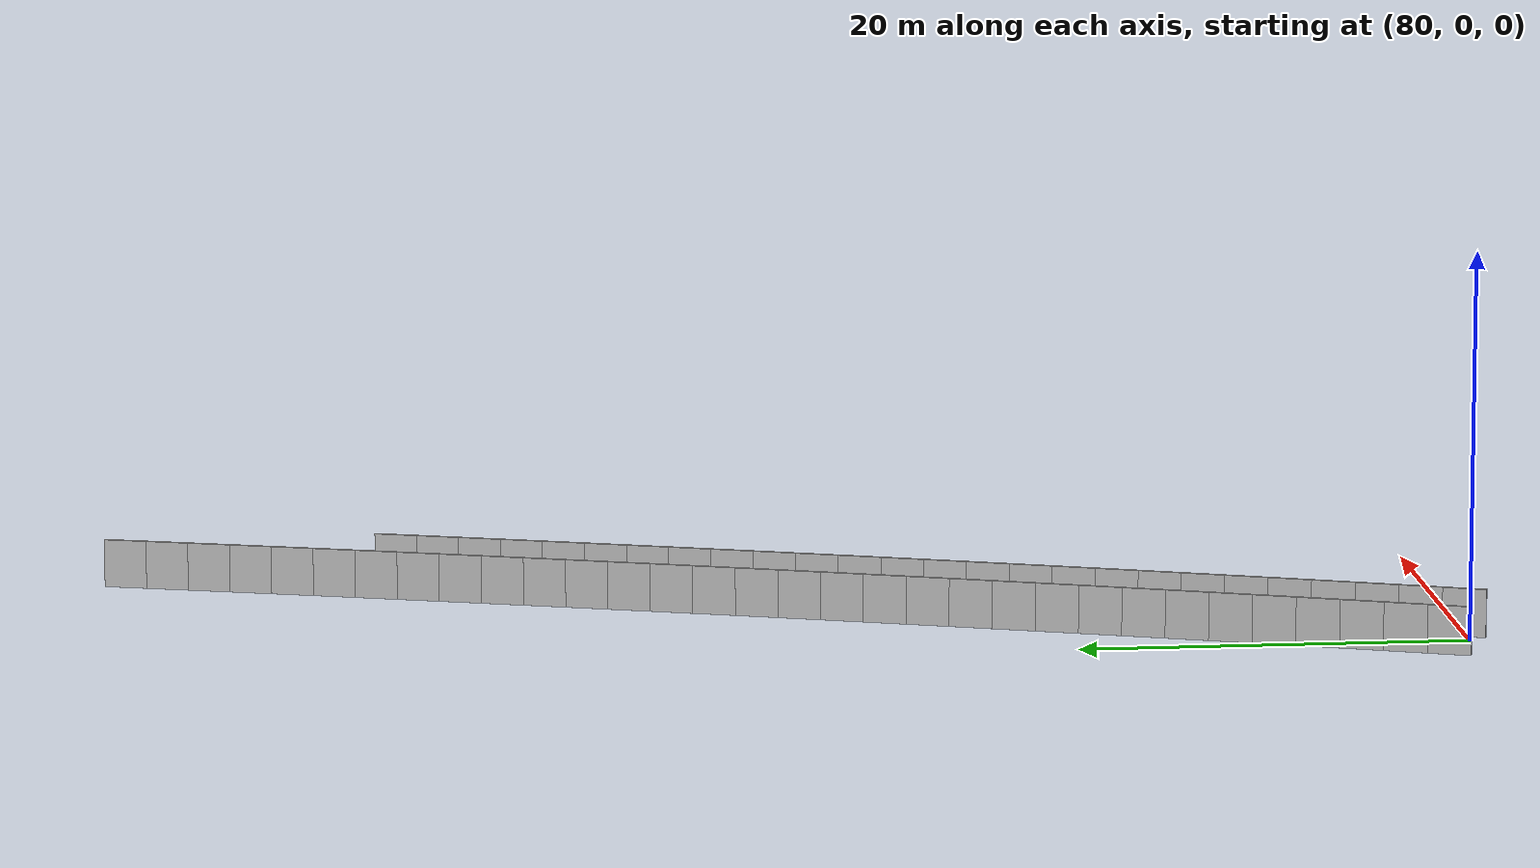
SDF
<?xml version="1.0" ?>
<sdf version="1.6">
  <model name="sps_2209">
    <pose frame="">0 0 0 0 -0 0</pose>
    <static>1</static>
    <self_collide>0</self_collide>
    <allow_auto_disable>0</allow_auto_disable>
    <link name="Wall4435">
      <kinematic>0</kinematic>
      <gravity>1</gravity>
      <self_collide>0</self_collide>
      <collision name="collision">
        <geometry>
          <box>
            <size>2.25456 0.15 2.5</size>
          </box>
        </geometry>
        <pose frame="">0 0 0 0 -0 0</pose>
      </collision>
      <visual name="visual">
        <geometry>
          <box>
            <size>2.25456 0.15 2.5</size>
          </box>
        </geometry>
        <pose frame="">0 0 0 0 -0 0</pose>
        <cast_shadows>1</cast_shadows>
        <transparency>0.0</transparency>
      </visual>
      <pose frame="">81.1479 0.140304 1.25 0 -0 1.20928</pose>
    </link>
    <link name="Wall4436">
      <kinematic>0</kinematic>
      <gravity>1</gravity>
      <self_collide>0</self_collide>
      <collision name="collision">
        <geometry>
          <box>
            <size>2.25454 0.15 2.5</size>
          </box>
        </geometry>
        <pose frame="">0 0 0 0 -0 0</pose>
      </collision>
      <visual name="visual">
        <geometry>
          <box>
            <size>2.25454 0.15 2.5</size>
          </box>
        </geometry>
        <pose frame="">0 0 0 0 -0 0</pose>
        <cast_shadows>1</cast_shadows>
        <transparency>0.0</transparency>
      </visual>
      <pose frame="">81.9427 2.25011 1.25 0 -0 1.21176</pose>
    </link>
    <link name="Wall4437">
      <kinematic>0</kinematic>
      <gravity>1</gravity>
      <self_collide>0</self_collide>
      <collision name="collision">
        <geometry>
          <box>
            <size>2.25475 0.15 2.5</size>
          </box>
        </geometry>
        <pose frame="">0 0 0 0 -0 0</pose>
      </collision>
      <visual name="visual">
        <geometry>
          <box>
            <size>2.25475 0.15 2.5</size>
          </box>
        </geometry>
        <pose frame="">0 0 0 0 -0 0</pose>
        <cast_shadows>1</cast_shadows>
        <transparency>0.0</transparency>
      </visual>
      <pose frame="">82.7325 4.36189 1.25 0 -0 1.21405</pose>
    </link>
    <link name="Wall4438">
      <kinematic>0</kinematic>
      <gravity>1</gravity>
      <self_collide>0</self_collide>
      <collision name="collision">
        <geometry>
          <box>
            <size>2.25466 0.15 2.5</size>
          </box>
        </geometry>
        <pose frame="">0 0 0 0 -0 0</pose>
      </collision>
      <visual name="visual">
        <geometry>
          <box>
            <size>2.25466 0.15 2.5</size>
          </box>
        </geometry>
        <pose frame="">0 0 0 0 -0 0</pose>
        <cast_shadows>1</cast_shadows>
        <transparency>0.0</transparency>
      </visual>
      <pose frame="">83.5174 6.4756 1.25 0 -0 1.21649</pose>
    </link>
    <link name="Wall4439">
      <kinematic>0</kinematic>
      <gravity>1</gravity>
      <self_collide>0</self_collide>
      <collision name="collision">
        <geometry>
          <box>
            <size>2.2544 0.15 2.5</size>
          </box>
        </geometry>
        <pose frame="">0 0 0 0 -0 0</pose>
      </collision>
      <visual name="visual">
        <geometry>
          <box>
            <size>2.2544 0.15 2.5</size>
          </box>
        </geometry>
        <pose frame="">0 0 0 0 -0 0</pose>
        <cast_shadows>1</cast_shadows>
        <transparency>0.0</transparency>
      </visual>
      <pose frame="">84.297 8.59102 1.25 0 -0 1.21884</pose>
    </link>
    <link name="Wall4440">
      <kinematic>0</kinematic>
      <gravity>1</gravity>
      <self_collide>0</self_collide>
      <collision name="collision">
        <geometry>
          <box>
            <size>2.25477 0.15 2.5</size>
          </box>
        </geometry>
        <pose frame="">0 0 0 0 -0 0</pose>
      </collision>
      <visual name="visual">
        <geometry>
          <box>
            <size>2.25477 0.15 2.5</size>
          </box>
        </geometry>
        <pose frame="">0 0 0 0 -0 0</pose>
        <cast_shadows>1</cast_shadows>
        <transparency>0.0</transparency>
      </visual>
      <pose frame="">85.0718 10.7083 1.25 0 -0 1.22115</pose>
    </link>
    <link name="Wall4441">
      <kinematic>0</kinematic>
      <gravity>1</gravity>
      <self_collide>0</self_collide>
      <collision name="collision">
        <geometry>
          <box>
            <size>2.25455 0.15 2.5</size>
          </box>
        </geometry>
        <pose frame="">0 0 0 0 -0 0</pose>
      </collision>
      <visual name="visual">
        <geometry>
          <box>
            <size>2.25455 0.15 2.5</size>
          </box>
        </geometry>
        <pose frame="">0 0 0 0 -0 0</pose>
        <cast_shadows>1</cast_shadows>
        <transparency>0.0</transparency>
      </visual>
      <pose frame="">85.8416 12.8275 1.25 0 -0 1.22357</pose>
    </link>
    <link name="Wall4442">
      <kinematic>0</kinematic>
      <gravity>1</gravity>
      <self_collide>0</self_collide>
      <collision name="collision">
        <geometry>
          <box>
            <size>2.25468 0.15 2.5</size>
          </box>
        </geometry>
        <pose frame="">0 0 0 0 -0 0</pose>
      </collision>
      <visual name="visual">
        <geometry>
          <box>
            <size>2.25468 0.15 2.5</size>
          </box>
        </geometry>
        <pose frame="">0 0 0 0 -0 0</pose>
        <cast_shadows>1</cast_shadows>
        <transparency>0.0</transparency>
      </visual>
      <pose frame="">86.6063 14.9485 1.25 0 -0 1.22603</pose>
    </link>
    <link name="Wall4443">
      <kinematic>0</kinematic>
      <gravity>1</gravity>
      <self_collide>0</self_collide>
      <collision name="collision">
        <geometry>
          <box>
            <size>2.25449 0.15 2.5</size>
          </box>
        </geometry>
        <pose frame="">0 0 0 0 -0 0</pose>
      </collision>
      <visual name="visual">
        <geometry>
          <box>
            <size>2.25449 0.15 2.5</size>
          </box>
        </geometry>
        <pose frame="">0 0 0 0 -0 0</pose>
        <cast_shadows>1</cast_shadows>
        <transparency>0.0</transparency>
      </visual>
      <pose frame="">87.3658 17.0713 1.25 0 -0 1.22836</pose>
    </link>
    <link name="Wall4444">
      <kinematic>0</kinematic>
      <gravity>1</gravity>
      <self_collide>0</self_collide>
      <collision name="collision">
        <geometry>
          <box>
            <size>2.2547 0.15 2.5</size>
          </box>
        </geometry>
        <pose frame="">0 0 0 0 -0 0</pose>
      </collision>
      <visual name="visual">
        <geometry>
          <box>
            <size>2.2547 0.15 2.5</size>
          </box>
        </geometry>
        <pose frame="">0 0 0 0 -0 0</pose>
        <cast_shadows>1</cast_shadows>
        <transparency>0.0</transparency>
      </visual>
      <pose frame="">88.1203 19.1959 1.25 0 -0 1.23078</pose>
    </link>
    <link name="Wall4445">
      <kinematic>0</kinematic>
      <gravity>1</gravity>
      <self_collide>0</self_collide>
      <collision name="collision">
        <geometry>
          <box>
            <size>2.25408 0.15 2.5</size>
          </box>
        </geometry>
        <pose frame="">0 0 0 0 -0 0</pose>
      </collision>
      <visual name="visual">
        <geometry>
          <box>
            <size>2.25408 0.15 2.5</size>
          </box>
        </geometry>
        <pose frame="">0 0 0 0 -0 0</pose>
        <cast_shadows>1</cast_shadows>
        <transparency>0.0</transparency>
      </visual>
      <pose frame="">88.8696 21.3221 1.25 0 -0 1.23318</pose>
    </link>
    <link name="Wall4446">
      <kinematic>0</kinematic>
      <gravity>1</gravity>
      <self_collide>0</self_collide>
      <collision name="collision">
        <geometry>
          <box>
            <size>2.25457 0.15 2.5</size>
          </box>
        </geometry>
        <pose frame="">0 0 0 0 -0 0</pose>
      </collision>
      <visual name="visual">
        <geometry>
          <box>
            <size>2.25457 0.15 2.5</size>
          </box>
        </geometry>
        <pose frame="">0 0 0 0 -0 0</pose>
        <cast_shadows>1</cast_shadows>
        <transparency>0.0</transparency>
      </visual>
      <pose frame="">89.6139 23.45 1.25 0 -0 1.23543</pose>
    </link>
    <link name="Wall4447">
      <kinematic>0</kinematic>
      <gravity>1</gravity>
      <self_collide>0</self_collide>
      <collision name="collision">
        <geometry>
          <box>
            <size>2.25481 0.15 2.5</size>
          </box>
        </geometry>
        <pose frame="">0 0 0 0 -0 0</pose>
      </collision>
      <visual name="visual">
        <geometry>
          <box>
            <size>2.25481 0.15 2.5</size>
          </box>
        </geometry>
        <pose frame="">0 0 0 0 -0 0</pose>
        <cast_shadows>1</cast_shadows>
        <transparency>0.0</transparency>
      </visual>
      <pose frame="">90.3533 25.58 1.25 0 -0 1.23793</pose>
    </link>
    <link name="Wall4448">
      <kinematic>0</kinematic>
      <gravity>1</gravity>
      <self_collide>0</self_collide>
      <collision name="collision">
        <geometry>
          <box>
            <size>2.2547 0.15 2.5</size>
          </box>
        </geometry>
        <pose frame="">0 0 0 0 -0 0</pose>
      </collision>
      <visual name="visual">
        <geometry>
          <box>
            <size>2.2547 0.15 2.5</size>
          </box>
        </geometry>
        <pose frame="">0 0 0 0 -0 0</pose>
        <cast_shadows>1</cast_shadows>
        <transparency>0.0</transparency>
      </visual>
      <pose frame="">91.0876 27.7118 1.25 0 -0 1.24015</pose>
    </link>
    <link name="Wall4449">
      <kinematic>0</kinematic>
      <gravity>1</gravity>
      <self_collide>0</self_collide>
      <collision name="collision">
        <geometry>
          <box>
            <size>2.25458 0.15 2.5</size>
          </box>
        </geometry>
        <pose frame="">0 0 0 0 -0 0</pose>
      </collision>
      <visual name="visual">
        <geometry>
          <box>
            <size>2.25458 0.15 2.5</size>
          </box>
        </geometry>
        <pose frame="">0 0 0 0 -0 0</pose>
        <cast_shadows>1</cast_shadows>
        <transparency>0.0</transparency>
      </visual>
      <pose frame="">91.817 29.8452 1.25 0 -0 1.24257</pose>
    </link>
    <link name="Wall4450">
      <kinematic>0</kinematic>
      <gravity>1</gravity>
      <self_collide>0</self_collide>
      <collision name="collision">
        <geometry>
          <box>
            <size>2.25459 0.15 2.5</size>
          </box>
        </geometry>
        <pose frame="">0 0 0 0 -0 0</pose>
      </collision>
      <visual name="visual">
        <geometry>
          <box>
            <size>2.25459 0.15 2.5</size>
          </box>
        </geometry>
        <pose frame="">0 0 0 0 -0 0</pose>
        <cast_shadows>1</cast_shadows>
        <transparency>0.0</transparency>
      </visual>
      <pose frame="">92.5413 31.9803 1.25 0 -0 1.245</pose>
    </link>
    <link name="Wall4451">
      <kinematic>0</kinematic>
      <gravity>1</gravity>
      <self_collide>0</self_collide>
      <collision name="collision">
        <geometry>
          <box>
            <size>2.25473 0.15 2.5</size>
          </box>
        </geometry>
        <pose frame="">0 0 0 0 -0 0</pose>
      </collision>
      <visual name="visual">
        <geometry>
          <box>
            <size>2.25473 0.15 2.5</size>
          </box>
        </geometry>
        <pose frame="">0 0 0 0 -0 0</pose>
        <cast_shadows>1</cast_shadows>
        <transparency>0.0</transparency>
      </visual>
      <pose frame="">93.2604 34.1172 1.25 0 -0 1.24736</pose>
    </link>
    <link name="Wall4452">
      <kinematic>0</kinematic>
      <gravity>1</gravity>
      <self_collide>0</self_collide>
      <collision name="collision">
        <geometry>
          <box>
            <size>2.25457 0.15 2.5</size>
          </box>
        </geometry>
        <pose frame="">0 0 0 0 -0 0</pose>
      </collision>
      <visual name="visual">
        <geometry>
          <box>
            <size>2.25457 0.15 2.5</size>
          </box>
        </geometry>
        <pose frame="">0 0 0 0 -0 0</pose>
        <cast_shadows>1</cast_shadows>
        <transparency>0.0</transparency>
      </visual>
      <pose frame="">93.9744 36.2558 1.25 0 -0 1.24979</pose>
    </link>
    <link name="Wall4453">
      <kinematic>0</kinematic>
      <gravity>1</gravity>
      <self_collide>0</self_collide>
      <collision name="collision">
        <geometry>
          <box>
            <size>2.25452 0.15 2.5</size>
          </box>
        </geometry>
        <pose frame="">0 0 0 0 -0 0</pose>
      </collision>
      <visual name="visual">
        <geometry>
          <box>
            <size>2.25452 0.15 2.5</size>
          </box>
        </geometry>
        <pose frame="">0 0 0 0 -0 0</pose>
        <cast_shadows>1</cast_shadows>
        <transparency>0.0</transparency>
      </visual>
      <pose frame="">94.6832 38.396 1.25 0 -0 1.25209</pose>
    </link>
    <link name="Wall4454">
      <kinematic>0</kinematic>
      <gravity>1</gravity>
      <self_collide>0</self_collide>
      <collision name="collision">
        <geometry>
          <box>
            <size>2.2548 0.15 2.5</size>
          </box>
        </geometry>
        <pose frame="">0 0 0 0 -0 0</pose>
      </collision>
      <visual name="visual">
        <geometry>
          <box>
            <size>2.2548 0.15 2.5</size>
          </box>
        </geometry>
        <pose frame="">0 0 0 0 -0 0</pose>
        <cast_shadows>1</cast_shadows>
        <transparency>0.0</transparency>
      </visual>
      <pose frame="">95.387 40.538 1.25 0 -0 1.25458</pose>
    </link>
    <link name="Wall4455">
      <kinematic>0</kinematic>
      <gravity>1</gravity>
      <self_collide>0</self_collide>
      <collision name="collision">
        <geometry>
          <box>
            <size>2.25466 0.15 2.5</size>
          </box>
        </geometry>
        <pose frame="">0 0 0 0 -0 0</pose>
      </collision>
      <visual name="visual">
        <geometry>
          <box>
            <size>2.25466 0.15 2.5</size>
          </box>
        </geometry>
        <pose frame="">0 0 0 0 -0 0</pose>
        <cast_shadows>1</cast_shadows>
        <transparency>0.0</transparency>
      </visual>
      <pose frame="">96.0858 42.6817 1.25 0 -0 1.25678</pose>
    </link>
    <link name="Wall4456">
      <kinematic>0</kinematic>
      <gravity>1</gravity>
      <self_collide>0</self_collide>
      <collision name="collision">
        <geometry>
          <box>
            <size>2.25457 0.15 2.5</size>
          </box>
        </geometry>
        <pose frame="">0 0 0 0 -0 0</pose>
      </collision>
      <visual name="visual">
        <geometry>
          <box>
            <size>2.25457 0.15 2.5</size>
          </box>
        </geometry>
        <pose frame="">0 0 0 0 -0 0</pose>
        <cast_shadows>1</cast_shadows>
        <transparency>0.0</transparency>
      </visual>
      <pose frame="">96.7797 44.8269 1.25 0 -0 1.25919</pose>
    </link>
    <link name="Wall4457">
      <kinematic>0</kinematic>
      <gravity>1</gravity>
      <self_collide>0</self_collide>
      <collision name="collision">
        <geometry>
          <box>
            <size>2.25465 0.15 2.5</size>
          </box>
        </geometry>
        <pose frame="">0 0 0 0 -0 0</pose>
      </collision>
      <visual name="visual">
        <geometry>
          <box>
            <size>2.25465 0.15 2.5</size>
          </box>
        </geometry>
        <pose frame="">0 0 0 0 -0 0</pose>
        <cast_shadows>1</cast_shadows>
        <transparency>0.0</transparency>
      </visual>
      <pose frame="">97.4683 46.9738 1.25 0 -0 1.26165</pose>
    </link>
    <link name="Wall4458">
      <kinematic>0</kinematic>
      <gravity>1</gravity>
      <self_collide>0</self_collide>
      <collision name="collision">
        <geometry>
          <box>
            <size>2.25465 0.15 2.5</size>
          </box>
        </geometry>
        <pose frame="">0 0 0 0 -0 0</pose>
      </collision>
      <visual name="visual">
        <geometry>
          <box>
            <size>2.25465 0.15 2.5</size>
          </box>
        </geometry>
        <pose frame="">0 0 0 0 -0 0</pose>
        <cast_shadows>1</cast_shadows>
        <transparency>0.0</transparency>
      </visual>
      <pose frame="">98.1516 49.1224 1.25 0 -0 1.26406</pose>
    </link>
    <link name="Wall4459">
      <kinematic>0</kinematic>
      <gravity>1</gravity>
      <self_collide>0</self_collide>
      <collision name="collision">
        <geometry>
          <box>
            <size>2.25468 0.15 2.5</size>
          </box>
        </geometry>
        <pose frame="">0 0 0 0 -0 0</pose>
      </collision>
      <visual name="visual">
        <geometry>
          <box>
            <size>2.25468 0.15 2.5</size>
          </box>
        </geometry>
        <pose frame="">0 0 0 0 -0 0</pose>
        <cast_shadows>1</cast_shadows>
        <transparency>0.0</transparency>
      </visual>
      <pose frame="">98.8299 51.2726 1.25 0 -0 1.26636</pose>
    </link>
    <link name="Wall4460">
      <kinematic>0</kinematic>
      <gravity>1</gravity>
      <self_collide>0</self_collide>
      <collision name="collision">
        <geometry>
          <box>
            <size>2.25391 0.15 2.5</size>
          </box>
        </geometry>
        <pose frame="">0 0 0 0 -0 0</pose>
      </collision>
      <visual name="visual">
        <geometry>
          <box>
            <size>2.25391 0.15 2.5</size>
          </box>
        </geometry>
        <pose frame="">0 0 0 0 -0 0</pose>
        <cast_shadows>1</cast_shadows>
        <transparency>0.0</transparency>
      </visual>
      <pose frame="">99.503 53.4241 1.25 0 -0 1.2689</pose>
    </link>
    <link name="Wall6160">
      <kinematic>0</kinematic>
      <gravity>1</gravity>
      <self_collide>0</self_collide>
      <collision name="collision">
        <geometry>
          <box>
            <size>2.2449 0.15 2.5</size>
          </box>
        </geometry>
        <pose frame="">0 0 0 0 -0 0</pose>
      </collision>
      <visual name="visual">
        <geometry>
          <box>
            <size>2.2449 0.15 2.5</size>
          </box>
        </geometry>
        <pose frame="">0 0 0 0 -0 0</pose>
        <cast_shadows>1</cast_shadows>
        <transparency>0.0</transparency>
      </visual>
      <pose frame="">77.2761 1.60417 1.25 0 -0 1.20928</pose>
    </link>
    <link name="Wall6161">
      <kinematic>0</kinematic>
      <gravity>1</gravity>
      <self_collide>0</self_collide>
      <collision name="collision">
        <geometry>
          <box>
            <size>2.24485 0.15 2.5</size>
          </box>
        </geometry>
        <pose frame="">0 0 0 0 -0 0</pose>
      </collision>
      <visual name="visual">
        <geometry>
          <box>
            <size>2.24485 0.15 2.5</size>
          </box>
        </geometry>
        <pose frame="">0 0 0 0 -0 0</pose>
        <cast_shadows>1</cast_shadows>
        <transparency>0.0</transparency>
      </visual>
      <pose frame="">78.0676 3.70488 1.25 0 -0 1.21165</pose>
    </link>
    <link name="Wall6162">
      <kinematic>0</kinematic>
      <gravity>1</gravity>
      <self_collide>0</self_collide>
      <collision name="collision">
        <geometry>
          <box>
            <size>2.24486 0.15 2.5</size>
          </box>
        </geometry>
        <pose frame="">0 0 0 0 -0 0</pose>
      </collision>
      <visual name="visual">
        <geometry>
          <box>
            <size>2.24486 0.15 2.5</size>
          </box>
        </geometry>
        <pose frame="">0 0 0 0 -0 0</pose>
        <cast_shadows>1</cast_shadows>
        <transparency>0.0</transparency>
      </visual>
      <pose frame="">78.854 5.80748 1.25 0 -0 1.21412</pose>
    </link>
    <link name="Wall6163">
      <kinematic>0</kinematic>
      <gravity>1</gravity>
      <self_collide>0</self_collide>
      <collision name="collision">
        <geometry>
          <box>
            <size>2.2449 0.15 2.5</size>
          </box>
        </geometry>
        <pose frame="">0 0 0 0 -0 0</pose>
      </collision>
      <visual name="visual">
        <geometry>
          <box>
            <size>2.2449 0.15 2.5</size>
          </box>
        </geometry>
        <pose frame="">0 0 0 0 -0 0</pose>
        <cast_shadows>1</cast_shadows>
        <transparency>0.0</transparency>
      </visual>
      <pose frame="">79.6354 7.91197 1.25 0 -0 1.21642</pose>
    </link>
    <link name="Wall6164">
      <kinematic>0</kinematic>
      <gravity>1</gravity>
      <self_collide>0</self_collide>
      <collision name="collision">
        <geometry>
          <box>
            <size>2.24482 0.15 2.5</size>
          </box>
        </geometry>
        <pose frame="">0 0 0 0 -0 0</pose>
      </collision>
      <visual name="visual">
        <geometry>
          <box>
            <size>2.24482 0.15 2.5</size>
          </box>
        </geometry>
        <pose frame="">0 0 0 0 -0 0</pose>
        <cast_shadows>1</cast_shadows>
        <transparency>0.0</transparency>
      </visual>
      <pose frame="">80.4118 10.0183 1.25 0 -0 1.21887</pose>
    </link>
    <link name="Wall6165">
      <kinematic>0</kinematic>
      <gravity>1</gravity>
      <self_collide>0</self_collide>
      <collision name="collision">
        <geometry>
          <box>
            <size>2.2447 0.15 2.5</size>
          </box>
        </geometry>
        <pose frame="">0 0 0 0 -0 0</pose>
      </collision>
      <visual name="visual">
        <geometry>
          <box>
            <size>2.2447 0.15 2.5</size>
          </box>
        </geometry>
        <pose frame="">0 0 0 0 -0 0</pose>
        <cast_shadows>1</cast_shadows>
        <transparency>0.0</transparency>
      </visual>
      <pose frame="">81.183 12.1264 1.25 0 -0 1.22131</pose>
    </link>
    <link name="Wall6166">
      <kinematic>0</kinematic>
      <gravity>1</gravity>
      <self_collide>0</self_collide>
      <collision name="collision">
        <geometry>
          <box>
            <size>2.24478 0.15 2.5</size>
          </box>
        </geometry>
        <pose frame="">0 0 0 0 -0 0</pose>
      </collision>
      <visual name="visual">
        <geometry>
          <box>
            <size>2.24478 0.15 2.5</size>
          </box>
        </geometry>
        <pose frame="">0 0 0 0 -0 0</pose>
        <cast_shadows>1</cast_shadows>
        <transparency>0.0</transparency>
      </visual>
      <pose frame="">81.9493 14.2363 1.25 0 -0 1.22352</pose>
    </link>
    <link name="Wall6167">
      <kinematic>0</kinematic>
      <gravity>1</gravity>
      <self_collide>0</self_collide>
      <collision name="collision">
        <geometry>
          <box>
            <size>2.24475 0.15 2.5</size>
          </box>
        </geometry>
        <pose frame="">0 0 0 0 -0 0</pose>
      </collision>
      <visual name="visual">
        <geometry>
          <box>
            <size>2.24475 0.15 2.5</size>
          </box>
        </geometry>
        <pose frame="">0 0 0 0 -0 0</pose>
        <cast_shadows>1</cast_shadows>
        <transparency>0.0</transparency>
      </visual>
      <pose frame="">82.7107 16.348 1.25 0 -0 1.22597</pose>
    </link>
    <link name="Wall6168">
      <kinematic>0</kinematic>
      <gravity>1</gravity>
      <self_collide>0</self_collide>
      <collision name="collision">
        <geometry>
          <box>
            <size>2.24484 0.15 2.5</size>
          </box>
        </geometry>
        <pose frame="">0 0 0 0 -0 0</pose>
      </collision>
      <visual name="visual">
        <geometry>
          <box>
            <size>2.24484 0.15 2.5</size>
          </box>
        </geometry>
        <pose frame="">0 0 0 0 -0 0</pose>
        <cast_shadows>1</cast_shadows>
        <transparency>0.0</transparency>
      </visual>
      <pose frame="">83.4668 18.4616 1.25 0 -0 1.22844</pose>
    </link>
    <link name="Wall6169">
      <kinematic>0</kinematic>
      <gravity>1</gravity>
      <self_collide>0</self_collide>
      <collision name="collision">
        <geometry>
          <box>
            <size>2.24437 0.15 2.5</size>
          </box>
        </geometry>
        <pose frame="">0 0 0 0 -0 0</pose>
      </collision>
      <visual name="visual">
        <geometry>
          <box>
            <size>2.24437 0.15 2.5</size>
          </box>
        </geometry>
        <pose frame="">0 0 0 0 -0 0</pose>
        <cast_shadows>1</cast_shadows>
        <transparency>0.0</transparency>
      </visual>
      <pose frame="">84.2179 20.5768 1.25 0 -0 1.23074</pose>
    </link>
    <link name="Wall6170">
      <kinematic>0</kinematic>
      <gravity>1</gravity>
      <self_collide>0</self_collide>
      <collision name="collision">
        <geometry>
          <box>
            <size>2.24472 0.15 2.5</size>
          </box>
        </geometry>
        <pose frame="">0 0 0 0 -0 0</pose>
      </collision>
      <visual name="visual">
        <geometry>
          <box>
            <size>2.24472 0.15 2.5</size>
          </box>
        </geometry>
        <pose frame="">0 0 0 0 -0 0</pose>
        <cast_shadows>1</cast_shadows>
        <transparency>0.0</transparency>
      </visual>
      <pose frame="">84.964 22.6937 1.25 0 -0 1.23316</pose>
    </link>
    <link name="Wall6171">
      <kinematic>0</kinematic>
      <gravity>1</gravity>
      <self_collide>0</self_collide>
      <collision name="collision">
        <geometry>
          <box>
            <size>2.24459 0.15 2.5</size>
          </box>
        </geometry>
        <pose frame="">0 0 0 0 -0 0</pose>
      </collision>
      <visual name="visual">
        <geometry>
          <box>
            <size>2.24459 0.15 2.5</size>
          </box>
        </geometry>
        <pose frame="">0 0 0 0 -0 0</pose>
        <cast_shadows>1</cast_shadows>
        <transparency>0.0</transparency>
      </visual>
      <pose frame="">85.7052 24.8125 1.25 0 -0 1.23547</pose>
    </link>
    <link name="Wall6172">
      <kinematic>0</kinematic>
      <gravity>1</gravity>
      <self_collide>0</self_collide>
      <collision name="collision">
        <geometry>
          <box>
            <size>2.24495 0.15 2.5</size>
          </box>
        </geometry>
        <pose frame="">0 0 0 0 -0 0</pose>
      </collision>
      <visual name="visual">
        <geometry>
          <box>
            <size>2.24495 0.15 2.5</size>
          </box>
        </geometry>
        <pose frame="">0 0 0 0 -0 0</pose>
        <cast_shadows>1</cast_shadows>
        <transparency>0.0</transparency>
      </visual>
      <pose frame="">86.4414 26.9331 1.25 0 -0 1.23783</pose>
    </link>
    <link name="Wall6173">
      <kinematic>0</kinematic>
      <gravity>1</gravity>
      <self_collide>0</self_collide>
      <collision name="collision">
        <geometry>
          <box>
            <size>2.24487 0.15 2.5</size>
          </box>
        </geometry>
        <pose frame="">0 0 0 0 -0 0</pose>
      </collision>
      <visual name="visual">
        <geometry>
          <box>
            <size>2.24487 0.15 2.5</size>
          </box>
        </geometry>
        <pose frame="">0 0 0 0 -0 0</pose>
        <cast_shadows>1</cast_shadows>
        <transparency>0.0</transparency>
      </visual>
      <pose frame="">87.1725 29.0556 1.25 0 -0 1.24026</pose>
    </link>
    <link name="Wall6174">
      <kinematic>0</kinematic>
      <gravity>1</gravity>
      <self_collide>0</self_collide>
      <collision name="collision">
        <geometry>
          <box>
            <size>2.24466 0.15 2.5</size>
          </box>
        </geometry>
        <pose frame="">0 0 0 0 -0 0</pose>
      </collision>
      <visual name="visual">
        <geometry>
          <box>
            <size>2.24466 0.15 2.5</size>
          </box>
        </geometry>
        <pose frame="">0 0 0 0 -0 0</pose>
        <cast_shadows>1</cast_shadows>
        <transparency>0.0</transparency>
      </visual>
      <pose frame="">87.8986 31.1797 1.25 0 -0 1.24255</pose>
    </link>
    <link name="Wall6175">
      <kinematic>0</kinematic>
      <gravity>1</gravity>
      <self_collide>0</self_collide>
      <collision name="collision">
        <geometry>
          <box>
            <size>2.24488 0.15 2.5</size>
          </box>
        </geometry>
        <pose frame="">0 0 0 0 -0 0</pose>
      </collision>
      <visual name="visual">
        <geometry>
          <box>
            <size>2.24488 0.15 2.5</size>
          </box>
        </geometry>
        <pose frame="">0 0 0 0 -0 0</pose>
        <cast_shadows>1</cast_shadows>
        <transparency>0.0</transparency>
      </visual>
      <pose frame="">88.6197 33.3055 1.25 0 -0 1.24506</pose>
    </link>
    <link name="Wall6176">
      <kinematic>0</kinematic>
      <gravity>1</gravity>
      <self_collide>0</self_collide>
      <collision name="collision">
        <geometry>
          <box>
            <size>2.24475 0.15 2.5</size>
          </box>
        </geometry>
        <pose frame="">0 0 0 0 -0 0</pose>
      </collision>
      <visual name="visual">
        <geometry>
          <box>
            <size>2.24475 0.15 2.5</size>
          </box>
        </geometry>
        <pose frame="">0 0 0 0 -0 0</pose>
        <cast_shadows>1</cast_shadows>
        <transparency>0.0</transparency>
      </visual>
      <pose frame="">89.3356 35.4331 1.25 0 -0 1.24736</pose>
    </link>
    <link name="Wall6177">
      <kinematic>0</kinematic>
      <gravity>1</gravity>
      <self_collide>0</self_collide>
      <collision name="collision">
        <geometry>
          <box>
            <size>2.245 0.15 2.5</size>
          </box>
        </geometry>
        <pose frame="">0 0 0 0 -0 0</pose>
      </collision>
      <visual name="visual">
        <geometry>
          <box>
            <size>2.245 0.15 2.5</size>
          </box>
        </geometry>
        <pose frame="">0 0 0 0 -0 0</pose>
        <cast_shadows>1</cast_shadows>
        <transparency>0.0</transparency>
      </visual>
      <pose frame="">90.0466 37.5624 1.25 0 -0 1.24969</pose>
    </link>
    <link name="Wall6178">
      <kinematic>0</kinematic>
      <gravity>1</gravity>
      <self_collide>0</self_collide>
      <collision name="collision">
        <geometry>
          <box>
            <size>2.24458 0.15 2.5</size>
          </box>
        </geometry>
        <pose frame="">0 0 0 0 -0 0</pose>
      </collision>
      <visual name="visual">
        <geometry>
          <box>
            <size>2.24458 0.15 2.5</size>
          </box>
        </geometry>
        <pose frame="">0 0 0 0 -0 0</pose>
        <cast_shadows>1</cast_shadows>
        <transparency>0.0</transparency>
      </visual>
      <pose frame="">90.7524 39.6933 1.25 0 -0 1.25215</pose>
    </link>
    <link name="Wall6179">
      <kinematic>0</kinematic>
      <gravity>1</gravity>
      <self_collide>0</self_collide>
      <collision name="collision">
        <geometry>
          <box>
            <size>2.24478 0.15 2.5</size>
          </box>
        </geometry>
        <pose frame="">0 0 0 0 -0 0</pose>
      </collision>
      <visual name="visual">
        <geometry>
          <box>
            <size>2.24478 0.15 2.5</size>
          </box>
        </geometry>
        <pose frame="">0 0 0 0 -0 0</pose>
        <cast_shadows>1</cast_shadows>
        <transparency>0.0</transparency>
      </visual>
      <pose frame="">91.4532 41.8258 1.25 0 -0 1.25441</pose>
    </link>
    <link name="Wall6180">
      <kinematic>0</kinematic>
      <gravity>1</gravity>
      <self_collide>0</self_collide>
      <collision name="collision">
        <geometry>
          <box>
            <size>2.24484 0.15 2.5</size>
          </box>
        </geometry>
        <pose frame="">0 0 0 0 -0 0</pose>
      </collision>
      <visual name="visual">
        <geometry>
          <box>
            <size>2.24484 0.15 2.5</size>
          </box>
        </geometry>
        <pose frame="">0 0 0 0 -0 0</pose>
        <cast_shadows>1</cast_shadows>
        <transparency>0.0</transparency>
      </visual>
      <pose frame="">92.1489 43.9601 1.25 0 -0 1.25696</pose>
    </link>
    <link name="Wall6181">
      <kinematic>0</kinematic>
      <gravity>1</gravity>
      <self_collide>0</self_collide>
      <collision name="collision">
        <geometry>
          <box>
            <size>2.24477 0.15 2.5</size>
          </box>
        </geometry>
        <pose frame="">0 0 0 0 -0 0</pose>
      </collision>
      <visual name="visual">
        <geometry>
          <box>
            <size>2.24477 0.15 2.5</size>
          </box>
        </geometry>
        <pose frame="">0 0 0 0 -0 0</pose>
        <cast_shadows>1</cast_shadows>
        <transparency>0.0</transparency>
      </visual>
      <pose frame="">92.8396 46.096 1.25 0 -0 1.25918</pose>
    </link>
    <link name="Wall6182">
      <kinematic>0</kinematic>
      <gravity>1</gravity>
      <self_collide>0</self_collide>
      <collision name="collision">
        <geometry>
          <box>
            <size>2.24479 0.15 2.5</size>
          </box>
        </geometry>
        <pose frame="">0 0 0 0 -0 0</pose>
      </collision>
      <visual name="visual">
        <geometry>
          <box>
            <size>2.24479 0.15 2.5</size>
          </box>
        </geometry>
        <pose frame="">0 0 0 0 -0 0</pose>
        <cast_shadows>1</cast_shadows>
        <transparency>0.0</transparency>
      </visual>
      <pose frame="">93.5252 48.2335 1.25 0 -0 1.26164</pose>
    </link>
    <link name="Wall6183">
      <kinematic>0</kinematic>
      <gravity>1</gravity>
      <self_collide>0</self_collide>
      <collision name="collision">
        <geometry>
          <box>
            <size>2.24479 0.15 2.5</size>
          </box>
        </geometry>
        <pose frame="">0 0 0 0 -0 0</pose>
      </collision>
      <visual name="visual">
        <geometry>
          <box>
            <size>2.24479 0.15 2.5</size>
          </box>
        </geometry>
        <pose frame="">0 0 0 0 -0 0</pose>
        <cast_shadows>1</cast_shadows>
        <transparency>0.0</transparency>
      </visual>
      <pose frame="">94.2056 50.3727 1.25 0 -0 1.26407</pose>
    </link>
    <link name="Wall6184">
      <kinematic>0</kinematic>
      <gravity>1</gravity>
      <self_collide>0</self_collide>
      <collision name="collision">
        <geometry>
          <box>
            <size>2.24428 0.15 2.5</size>
          </box>
        </geometry>
        <pose frame="">0 0 0 0 -0 0</pose>
      </collision>
      <visual name="visual">
        <geometry>
          <box>
            <size>2.24428 0.15 2.5</size>
          </box>
        </geometry>
        <pose frame="">0 0 0 0 -0 0</pose>
        <cast_shadows>1</cast_shadows>
        <transparency>0.0</transparency>
      </visual>
      <pose frame="">94.8807 52.5133 1.25 0 -0 1.2665</pose>
    </link>
    <link name="Wall6185">
      <kinematic>0</kinematic>
      <gravity>1</gravity>
      <self_collide>0</self_collide>
      <collision name="collision">
        <geometry>
          <box>
            <size>2.24487 0.15 2.5</size>
          </box>
        </geometry>
        <pose frame="">0 0 0 0 -0 0</pose>
      </collision>
      <visual name="visual">
        <geometry>
          <box>
            <size>2.24487 0.15 2.5</size>
          </box>
        </geometry>
        <pose frame="">0 0 0 0 -0 0</pose>
        <cast_shadows>1</cast_shadows>
        <transparency>0.0</transparency>
      </visual>
      <pose frame="">95.5509 54.6555 1.25 0 -0 1.26867</pose>
    </link>
    <link name="Wall6186">
      <kinematic>0</kinematic>
      <gravity>1</gravity>
      <self_collide>0</self_collide>
      <collision name="collision">
        <geometry>
          <box>
            <size>2.24485 0.15 2.5</size>
          </box>
        </geometry>
        <pose frame="">0 0 0 0 -0 0</pose>
      </collision>
      <visual name="visual">
        <geometry>
          <box>
            <size>2.24485 0.15 2.5</size>
          </box>
        </geometry>
        <pose frame="">0 0 0 0 -0 0</pose>
        <cast_shadows>1</cast_shadows>
        <transparency>0.0</transparency>
      </visual>
      <pose frame="">96.2161 56.7995 1.25 0 -0 1.27117</pose>
    </link>
    <link name="Wall6187">
      <kinematic>0</kinematic>
      <gravity>1</gravity>
      <self_collide>0</self_collide>
      <collision name="collision">
        <geometry>
          <box>
            <size>2.24466 0.15 2.5</size>
          </box>
        </geometry>
        <pose frame="">0 0 0 0 -0 0</pose>
      </collision>
      <visual name="visual">
        <geometry>
          <box>
            <size>2.24466 0.15 2.5</size>
          </box>
        </geometry>
        <pose frame="">0 0 0 0 -0 0</pose>
        <cast_shadows>1</cast_shadows>
        <transparency>0.0</transparency>
      </visual>
      <pose frame="">96.8762 58.945 1.25 0 -0 1.27348</pose>
    </link>
    <link name="Wall6188">
      <kinematic>0</kinematic>
      <gravity>1</gravity>
      <self_collide>0</self_collide>
      <collision name="collision">
        <geometry>
          <box>
            <size>2.24478 0.15 2.5</size>
          </box>
        </geometry>
        <pose frame="">0 0 0 0 -0 0</pose>
      </collision>
      <visual name="visual">
        <geometry>
          <box>
            <size>2.24478 0.15 2.5</size>
          </box>
        </geometry>
        <pose frame="">0 0 0 0 -0 0</pose>
        <cast_shadows>1</cast_shadows>
        <transparency>0.0</transparency>
      </visual>
      <pose frame="">97.5313 61.092 1.25 0 -0 1.27582</pose>
    </link>
    <link name="Wall6189">
      <kinematic>0</kinematic>
      <gravity>1</gravity>
      <self_collide>0</self_collide>
      <collision name="collision">
        <geometry>
          <box>
            <size>2.24474 0.15 2.5</size>
          </box>
        </geometry>
        <pose frame="">0 0 0 0 -0 0</pose>
      </collision>
      <visual name="visual">
        <geometry>
          <box>
            <size>2.24474 0.15 2.5</size>
          </box>
        </geometry>
        <pose frame="">0 0 0 0 -0 0</pose>
        <cast_shadows>1</cast_shadows>
        <transparency>0.0</transparency>
      </visual>
      <pose frame="">98.1812 63.2406 1.25 0 -0 1.27832</pose>
    </link>
    <link name="Wall6190">
      <kinematic>0</kinematic>
      <gravity>1</gravity>
      <self_collide>0</self_collide>
      <collision name="collision">
        <geometry>
          <box>
            <size>2.24488 0.15 2.5</size>
          </box>
        </geometry>
        <pose frame="">0 0 0 0 -0 0</pose>
      </collision>
      <visual name="visual">
        <geometry>
          <box>
            <size>2.24488 0.15 2.5</size>
          </box>
        </geometry>
        <pose frame="">0 0 0 0 -0 0</pose>
        <cast_shadows>1</cast_shadows>
        <transparency>0.0</transparency>
      </visual>
      <pose frame="">98.826 65.3908 1.25 0 -0 1.28058</pose>
    </link>
    <link name="Wall6191">
      <kinematic>0</kinematic>
      <gravity>1</gravity>
      <self_collide>0</self_collide>
      <collision name="collision">
        <geometry>
          <box>
            <size>2.24463 0.15 2.5</size>
          </box>
        </geometry>
        <pose frame="">0 0 0 0 -0 0</pose>
      </collision>
      <visual name="visual">
        <geometry>
          <box>
            <size>2.24463 0.15 2.5</size>
          </box>
        </geometry>
        <pose frame="">0 0 0 0 -0 0</pose>
        <cast_shadows>1</cast_shadows>
        <transparency>0.0</transparency>
      </visual>
      <pose frame="">99.4658 67.5425 1.25 0 -0 1.28304</pose>
    </link>
  </model>
</sdf>
